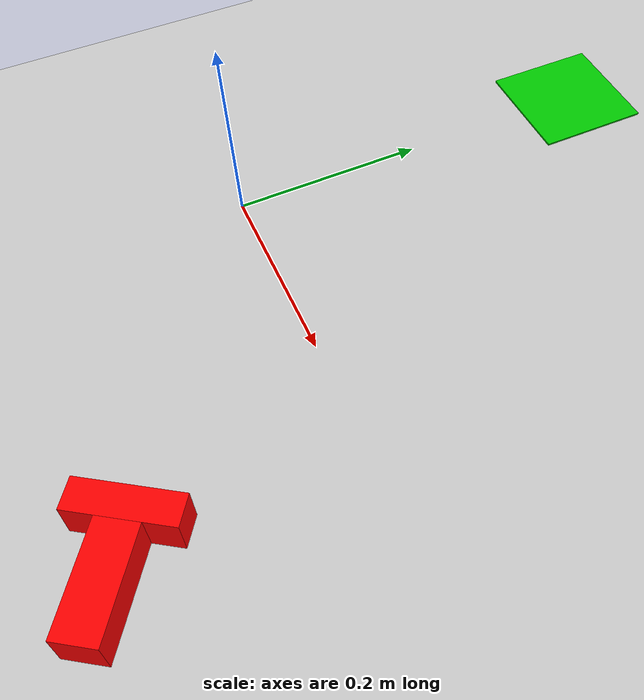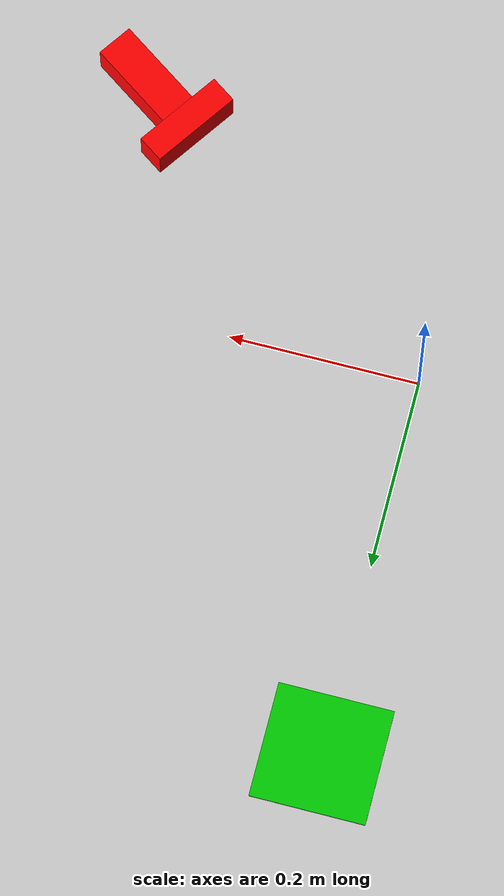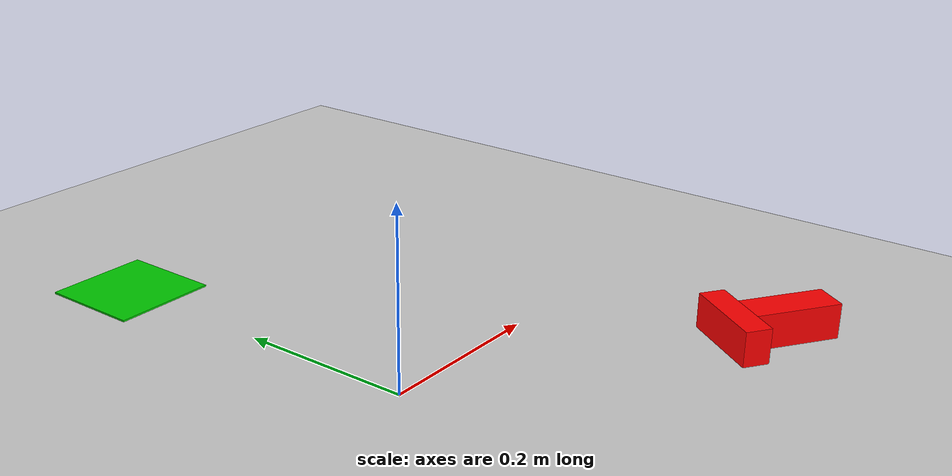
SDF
<?xml version="1.0"?>
<sdf version="1.6">
  <world name="default"><physics type="ode"><max_step_size>0.001</max_step_size><real_time_update_rate>1000</real_time_update_rate><ode><solver><type>quick</type><iters>150</iters><sor>1.3</sor></solver><constraints><cfm>0.0001</cfm><erp>0.2</erp><contact_max_correcting_vel>0.1</contact_max_correcting_vel><contact_surface_layer>0.001</contact_surface_layer></constraints></ode></physics>
    <include><uri>model://sun</uri></include>
    <include><uri>model://ground_plane</uri></include>

    <!-- RED CUBE (4 cm) -->
    <model name="red_t">
      <pose>0.299 -0.205 0.02 0 0 -0.6</pose>
      <link name="link">
        <inertial>
          <mass>0.07</mass>
          <inertia><ixx>0.0001</ixx><iyy>0.0001</iyy><izz>0.0001</izz>
                   <ixy>0</ixy><ixz>0</ixz><iyz>0</iyz></inertia>
        </inertial>
        <collision name="bar_collision">
          <pose>0 0 0 0 0 0</pose>
          <geometry><box><size>0.03 0.10 0.04</size></box></geometry>
          <surface><friction><ode><mu>2.0</mu><mu2>2.0</mu2></ode></friction></surface>
        </collision>
        <collision name="stem_collision">
          <pose>0.065 0 0 0 0 0</pose>
          <geometry><box><size>0.10 0.04 0.04</size></box></geometry>
          <surface><friction><ode><mu>2.0</mu><mu2>2.0</mu2></ode></friction></surface>
        </collision>
        <visual name="bar_visual">
          <pose>0 0 0 0 0 0</pose>
          <geometry><box><size>0.03 0.10 0.04</size></box></geometry>
          <material><ambient>1 0 0 1</ambient><diffuse>1 0 0 1</diffuse></material>
        </visual>
        <visual name="stem_visual">
          <pose>0.065 0 0 0 0 0</pose>
          <geometry><box><size>0.10 0.04 0.04</size></box></geometry>
          <material><ambient>1 0 0 1</ambient><diffuse>1 0 0 1</diffuse></material>
        </visual>
      </link>
    </model>

    <!-- GREEN DROP ZONE (flat, no collision) -->
    <model name="drop_zone">
      <static>true</static>
      <pose>0 0.40 0.001 0 0 0</pose>
      <link name="link">
        <visual name="visual">
          <geometry><box><size>0.12 0.12 0.002</size></box></geometry>
          <material><ambient>0 0.8 0 1</ambient><diffuse>0 0.8 0 1</diffuse></material>
        </visual>
      </link>
    </model>
  </world>
</sdf>
